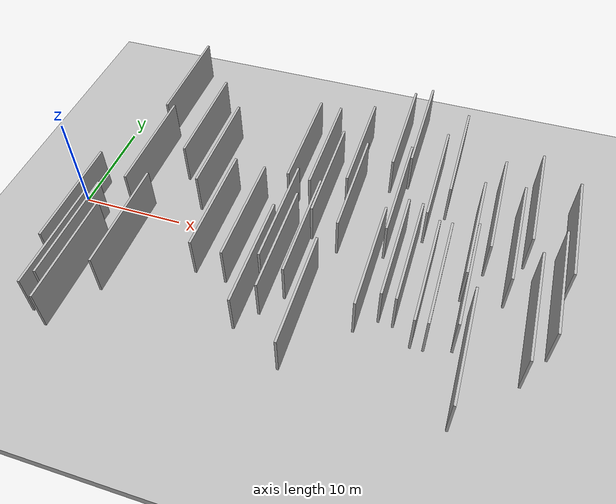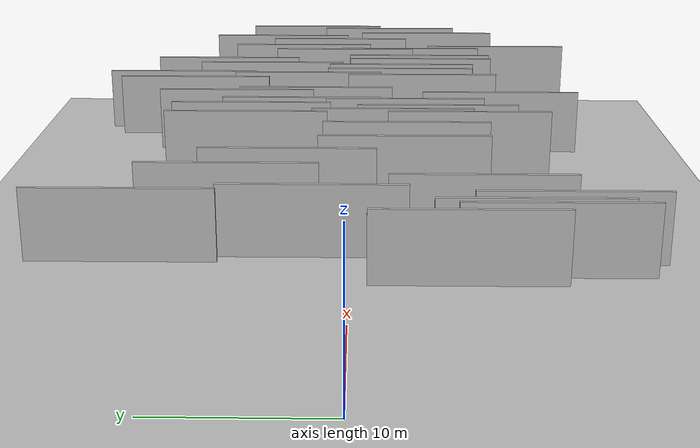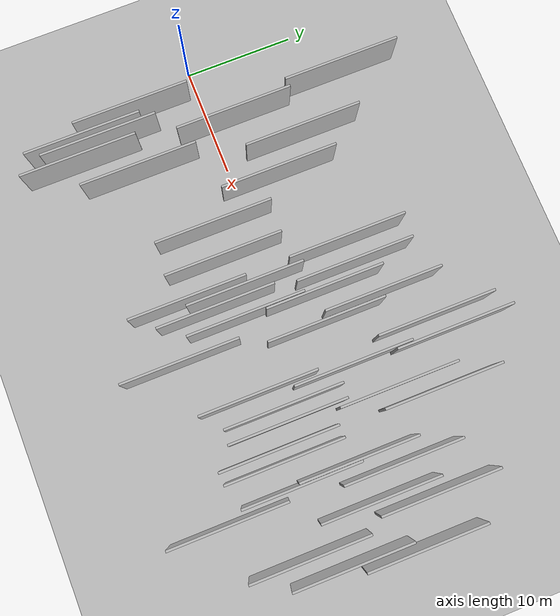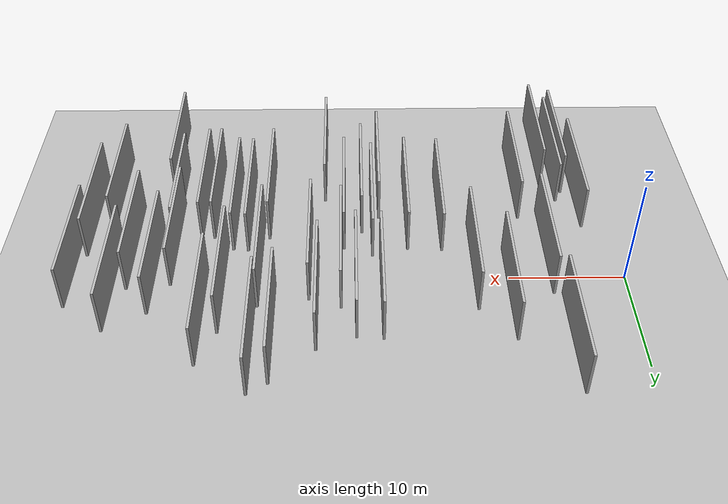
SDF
<?xml version="1.0" encoding="utf-8"?>

<sdf version="1.6">

   <world name="default">

      <gui fullscreen="0">

         <camera name="user_camera">

            <pose>-15 0 4.57585 0 0 0</pose>

            <view_controller>orbit</view_controller>

         </camera>

      </gui>

      <scene>

         <sky>

           <clouds>

             <speed>12</speed>

           </clouds>

         </sky>

         <ambient>0.4 0.4 0.4 1</ambient>

         <background>0.7 0.7 0.7 1</background>

         <shadows>1</shadows>

      </scene>

      <gravity>0 0 -9.8066</gravity>

      <magnetic_field>6e-06 2.3e-05 -4.2e-05</magnetic_field>

      <physics default="0" name="default_physics" type="ode">

         <ode>

            <solver>

               <type>quick</type>

               <iters>10</iters>

               <sor>1.0</sor>

               <use_dynamic_moi_rescaling>0</use_dynamic_moi_rescaling>

            </solver>

            <constraints>

               <cfm>0</cfm>

               <erp>0.2</erp>

               <contact_max_correcting_vel>100</contact_max_correcting_vel>

               <contact_surface_layer>0.001</contact_surface_layer>

            </constraints>

         </ode>

         <max_step_size>0.004</max_step_size>

         <real_time_factor>1</real_time_factor>

         <real_time_update_rate>250</real_time_update_rate>

      </physics>

      <light name="sun" type="directional">

         <cast_shadows>1</cast_shadows>

         <pose>0 0 10 0 0 0</pose>

         <diffuse>0.8 0.8 0.8 1</diffuse>

         <specular>0.2 0.2 0.2 1</specular>

         <attenuation>

            <range>1000</range>

            <constant>0.9</constant>

            <linear>0.01</linear>

            <quadratic>0.001</quadratic>

         </attenuation>

         <direction>-0.5 0.1 -0.9</direction>

      </light>

      <include>

         <name>ground_plane_1</name>

         <uri>model://HANNAS_ground_plane</uri>

         <pose>0 0 0  0 0 0</pose>

      </include>

      <include>

         <name>ground_plane_2</name>

         <uri>model://HANNAS_ground_plane</uri>

         <pose>100 0 0  0 0 0</pose>

      </include>

      <model name="HANNAS_wall_1">

         <static>1</static>

         <pose frame="">43.2806 -5.7247 5.0 0.000000 0.000000 1.570796</pose>

         <link name="link">

            <pose frame="">0 0 2.00 0 0 0</pose>

            <collision name="collision">

               <geometry>

                  <box>

                     <size>10.00 0.2 4.00</size>

                  </box>

               </geometry>

               <max_contacts>10</max_contacts>

               <surface>

                  <contact>

                     <ode/>

                  </contact>

                  <bounce/>

                  <friction>

                     <torsional>

                        <ode/>

                     </torsional>

                     <ode/>

                  </friction>

               </surface>

            </collision>

            <visual name="visual">

               <cast_shadows>0</cast_shadows>

               <geometry>

                  <box>

                     <size>10.00 0.2 4.00</size>

                  </box>

               </geometry>

               <material>

                  <script>

                     <uri>model://HANNAS_wall/materials/scripts</uri>

                     <uri>model://HANNAS_wall/materials/textures</uri>

                     <name>vrc/HANNAS_wall</name>

                  </script>

               </material>

            </visual>

            <self_collide>0</self_collide>

            <enable_wind>0</enable_wind>

            <kinematic>0</kinematic>

         </link>

      </model>

      <model name="HANNAS_wall_2">

         <static>1</static>

         <pose frame="">39.2177 3.6149 5.0 0.000000 0.000000 1.570796</pose>

         <link name="link">

            <pose frame="">0 0 2.00 0 0 0</pose>

            <collision name="collision">

               <geometry>

                  <box>

                     <size>10.00 0.2 4.00</size>

                  </box>

               </geometry>

               <max_contacts>10</max_contacts>

               <surface>

                  <contact>

                     <ode/>

                  </contact>

                  <bounce/>

                  <friction>

                     <torsional>

                        <ode/>

                     </torsional>

                     <ode/>

                  </friction>

               </surface>

            </collision>

            <visual name="visual">

               <cast_shadows>0</cast_shadows>

               <geometry>

                  <box>

                     <size>10.00 0.2 4.00</size>

                  </box>

               </geometry>

               <material>

                  <script>

                     <uri>model://HANNAS_wall/materials/scripts</uri>

                     <uri>model://HANNAS_wall/materials/textures</uri>

                     <name>vrc/HANNAS_wall</name>

                  </script>

               </material>

            </visual>

            <self_collide>0</self_collide>

            <enable_wind>0</enable_wind>

            <kinematic>0</kinematic>

         </link>

      </model>

      <model name="HANNAS_wall_3">

         <static>1</static>

         <pose frame="">30.2851 -4.8442 5.0 0.000000 0.000000 1.570796</pose>

         <link name="link">

            <pose frame="">0 0 2.00 0 0 0</pose>

            <collision name="collision">

               <geometry>

                  <box>

                     <size>10.00 0.2 4.00</size>

                  </box>

               </geometry>

               <max_contacts>10</max_contacts>

               <surface>

                  <contact>

                     <ode/>

                  </contact>

                  <bounce/>

                  <friction>

                     <torsional>

                        <ode/>

                     </torsional>

                     <ode/>

                  </friction>

               </surface>

            </collision>

            <visual name="visual">

               <cast_shadows>0</cast_shadows>

               <geometry>

                  <box>

                     <size>10.00 0.2 4.00</size>

                  </box>

               </geometry>

               <material>

                  <script>

                     <uri>model://HANNAS_wall/materials/scripts</uri>

                     <uri>model://HANNAS_wall/materials/textures</uri>

                     <name>vrc/HANNAS_wall</name>

                  </script>

               </material>

            </visual>

            <self_collide>0</self_collide>

            <enable_wind>0</enable_wind>

            <kinematic>0</kinematic>

         </link>

      </model>

      <model name="HANNAS_wall_4">

         <static>1</static>

         <pose frame="">31.0888 11.5013 5.0 0.000000 0.000000 1.570796</pose>

         <link name="link">

            <pose frame="">0 0 2.00 0 0 0</pose>

            <collision name="collision">

               <geometry>

                  <box>

                     <size>10.00 0.2 4.00</size>

                  </box>

               </geometry>

               <max_contacts>10</max_contacts>

               <surface>

                  <contact>

                     <ode/>

                  </contact>

                  <bounce/>

                  <friction>

                     <torsional>

                        <ode/>

                     </torsional>

                     <ode/>

                  </friction>

               </surface>

            </collision>

            <visual name="visual">

               <cast_shadows>0</cast_shadows>

               <geometry>

                  <box>

                     <size>10.00 0.2 4.00</size>

                  </box>

               </geometry>

               <material>

                  <script>

                     <uri>model://HANNAS_wall/materials/scripts</uri>

                     <uri>model://HANNAS_wall/materials/textures</uri>

                     <name>vrc/HANNAS_wall</name>

                  </script>

               </material>

            </visual>

            <self_collide>0</self_collide>

            <enable_wind>0</enable_wind>

            <kinematic>0</kinematic>

         </link>

      </model>

      <model name="HANNAS_wall_5">

         <static>1</static>

         <pose frame="">33.1559 -3.5065 5.0 0.000000 0.000000 1.570796</pose>

         <link name="link">

            <pose frame="">0 0 2.00 0 0 0</pose>

            <collision name="collision">

               <geometry>

                  <box>

                     <size>10.00 0.2 4.00</size>

                  </box>

               </geometry>

               <max_contacts>10</max_contacts>

               <surface>

                  <contact>

                     <ode/>

                  </contact>

                  <bounce/>

                  <friction>

                     <torsional>

                        <ode/>

                     </torsional>

                     <ode/>

                  </friction>

               </surface>

            </collision>

            <visual name="visual">

               <cast_shadows>0</cast_shadows>

               <geometry>

                  <box>

                     <size>10.00 0.2 4.00</size>

                  </box>

               </geometry>

               <material>

                  <script>

                     <uri>model://HANNAS_wall/materials/scripts</uri>

                     <uri>model://HANNAS_wall/materials/textures</uri>

                     <name>vrc/HANNAS_wall</name>

                  </script>

               </material>

            </visual>

            <self_collide>0</self_collide>

            <enable_wind>0</enable_wind>

            <kinematic>0</kinematic>

         </link>

      </model>

      <model name="HANNAS_wall_6">

         <static>1</static>

         <pose frame="">34.8321 -4.9176 5.0 0.000000 0.000000 1.570796</pose>

         <link name="link">

            <pose frame="">0 0 2.00 0 0 0</pose>

            <collision name="collision">

               <geometry>

                  <box>

                     <size>10.00 0.2 4.00</size>

                  </box>

               </geometry>

               <max_contacts>10</max_contacts>

               <surface>

                  <contact>

                     <ode/>

                  </contact>

                  <bounce/>

                  <friction>

                     <torsional>

                        <ode/>

                     </torsional>

                     <ode/>

                  </friction>

               </surface>

            </collision>

            <visual name="visual">

               <cast_shadows>0</cast_shadows>

               <geometry>

                  <box>

                     <size>10.00 0.2 4.00</size>

                  </box>

               </geometry>

               <material>

                  <script>

                     <uri>model://HANNAS_wall/materials/scripts</uri>

                     <uri>model://HANNAS_wall/materials/textures</uri>

                     <name>vrc/HANNAS_wall</name>

                  </script>

               </material>

            </visual>

            <self_collide>0</self_collide>

            <enable_wind>0</enable_wind>

            <kinematic>0</kinematic>

         </link>

      </model>

      <model name="HANNAS_wall_7">

         <static>1</static>

         <pose frame="">23.2161 6.2033 5.0 0.000000 0.000000 1.570796</pose>

         <link name="link">

            <pose frame="">0 0 2.00 0 0 0</pose>

            <collision name="collision">

               <geometry>

                  <box>

                     <size>10.00 0.2 4.00</size>

                  </box>

               </geometry>

               <max_contacts>10</max_contacts>

               <surface>

                  <contact>

                     <ode/>

                  </contact>

                  <bounce/>

                  <friction>

                     <torsional>

                        <ode/>

                     </torsional>

                     <ode/>

                  </friction>

               </surface>

            </collision>

            <visual name="visual">

               <cast_shadows>0</cast_shadows>

               <geometry>

                  <box>

                     <size>10.00 0.2 4.00</size>

                  </box>

               </geometry>

               <material>

                  <script>

                     <uri>model://HANNAS_wall/materials/scripts</uri>

                     <uri>model://HANNAS_wall/materials/textures</uri>

                     <name>vrc/HANNAS_wall</name>

                  </script>

               </material>

            </visual>

            <self_collide>0</self_collide>

            <enable_wind>0</enable_wind>

            <kinematic>0</kinematic>

         </link>

      </model>

      <model name="HANNAS_wall_8">

         <static>1</static>

         <pose frame="">26.2507 7.3938 5.0 0.000000 0.000000 1.570796</pose>

         <link name="link">

            <pose frame="">0 0 2.00 0 0 0</pose>

            <collision name="collision">

               <geometry>

                  <box>

                     <size>10.00 0.2 4.00</size>

                  </box>

               </geometry>

               <max_contacts>10</max_contacts>

               <surface>

                  <contact>

                     <ode/>

                  </contact>

                  <bounce/>

                  <friction>

                     <torsional>

                        <ode/>

                     </torsional>

                     <ode/>

                  </friction>

               </surface>

            </collision>

            <visual name="visual">

               <cast_shadows>0</cast_shadows>

               <geometry>

                  <box>

                     <size>10.00 0.2 4.00</size>

                  </box>

               </geometry>

               <material>

                  <script>

                     <uri>model://HANNAS_wall/materials/scripts</uri>

                     <uri>model://HANNAS_wall/materials/textures</uri>

                     <name>vrc/HANNAS_wall</name>

                  </script>

               </material>

            </visual>

            <self_collide>0</self_collide>

            <enable_wind>0</enable_wind>

            <kinematic>0</kinematic>

         </link>

      </model>

      <model name="HANNAS_wall_9">

         <static>1</static>

         <pose frame="">9.4835 -7.1806 5.0 0.000000 0.000000 1.570796</pose>

         <link name="link">

            <pose frame="">0 0 2.00 0 0 0</pose>

            <collision name="collision">

               <geometry>

                  <box>

                     <size>10.00 0.2 4.00</size>

                  </box>

               </geometry>

               <max_contacts>10</max_contacts>

               <surface>

                  <contact>

                     <ode/>

                  </contact>

                  <bounce/>

                  <friction>

                     <torsional>

                        <ode/>

                     </torsional>

                     <ode/>

                  </friction>

               </surface>

            </collision>

            <visual name="visual">

               <cast_shadows>0</cast_shadows>

               <geometry>

                  <box>

                     <size>10.00 0.2 4.00</size>

                  </box>

               </geometry>

               <material>

                  <script>

                     <uri>model://HANNAS_wall/materials/scripts</uri>

                     <uri>model://HANNAS_wall/materials/textures</uri>

                     <name>vrc/HANNAS_wall</name>

                  </script>

               </material>

            </visual>

            <self_collide>0</self_collide>

            <enable_wind>0</enable_wind>

            <kinematic>0</kinematic>

         </link>

      </model>

      <model name="HANNAS_wall_10">

         <static>1</static>

         <pose frame="">35.8658 -4.8667 5.0 0.000000 0.000000 1.570796</pose>

         <link name="link">

            <pose frame="">0 0 2.00 0 0 0</pose>

            <collision name="collision">

               <geometry>

                  <box>

                     <size>10.00 0.2 4.00</size>

                  </box>

               </geometry>

               <max_contacts>10</max_contacts>

               <surface>

                  <contact>

                     <ode/>

                  </contact>

                  <bounce/>

                  <friction>

                     <torsional>

                        <ode/>

                     </torsional>

                     <ode/>

                  </friction>

               </surface>

            </collision>

            <visual name="visual">

               <cast_shadows>0</cast_shadows>

               <geometry>

                  <box>

                     <size>10.00 0.2 4.00</size>

                  </box>

               </geometry>

               <material>

                  <script>

                     <uri>model://HANNAS_wall/materials/scripts</uri>

                     <uri>model://HANNAS_wall/materials/textures</uri>

                     <name>vrc/HANNAS_wall</name>

                  </script>

               </material>

            </visual>

            <self_collide>0</self_collide>

            <enable_wind>0</enable_wind>

            <kinematic>0</kinematic>

         </link>

      </model>

      <model name="HANNAS_wall_11">

         <static>1</static>

         <pose frame="">24.3855 3.1231 5.0 0.000000 0.000000 1.570796</pose>

         <link name="link">

            <pose frame="">0 0 2.00 0 0 0</pose>

            <collision name="collision">

               <geometry>

                  <box>

                     <size>10.00 0.2 4.00</size>

                  </box>

               </geometry>

               <max_contacts>10</max_contacts>

               <surface>

                  <contact>

                     <ode/>

                  </contact>

                  <bounce/>

                  <friction>

                     <torsional>

                        <ode/>

                     </torsional>

                     <ode/>

                  </friction>

               </surface>

            </collision>

            <visual name="visual">

               <cast_shadows>0</cast_shadows>

               <geometry>

                  <box>

                     <size>10.00 0.2 4.00</size>

                  </box>

               </geometry>

               <material>

                  <script>

                     <uri>model://HANNAS_wall/materials/scripts</uri>

                     <uri>model://HANNAS_wall/materials/textures</uri>

                     <name>vrc/HANNAS_wall</name>

                  </script>

               </material>

            </visual>

            <self_collide>0</self_collide>

            <enable_wind>0</enable_wind>

            <kinematic>0</kinematic>

         </link>

      </model>

      <model name="HANNAS_wall_12">

         <static>1</static>

         <pose frame="">21.2422 -7.3533 5.0 0.000000 0.000000 1.570796</pose>

         <link name="link">

            <pose frame="">0 0 2.00 0 0 0</pose>

            <collision name="collision">

               <geometry>

                  <box>

                     <size>10.00 0.2 4.00</size>

                  </box>

               </geometry>

               <max_contacts>10</max_contacts>

               <surface>

                  <contact>

                     <ode/>

                  </contact>

                  <bounce/>

                  <friction>

                     <torsional>

                        <ode/>

                     </torsional>

                     <ode/>

                  </friction>

               </surface>

            </collision>

            <visual name="visual">

               <cast_shadows>0</cast_shadows>

               <geometry>

                  <box>

                     <size>10.00 0.2 4.00</size>

                  </box>

               </geometry>

               <material>

                  <script>

                     <uri>model://HANNAS_wall/materials/scripts</uri>

                     <uri>model://HANNAS_wall/materials/textures</uri>

                     <name>vrc/HANNAS_wall</name>

                  </script>

               </material>

            </visual>

            <self_collide>0</self_collide>

            <enable_wind>0</enable_wind>

            <kinematic>0</kinematic>

         </link>

      </model>

      <model name="HANNAS_wall_13">

         <static>1</static>

         <pose frame="">5.9377 -9.3927 5.0 0.000000 0.000000 1.570796</pose>

         <link name="link">

            <pose frame="">0 0 2.00 0 0 0</pose>

            <collision name="collision">

               <geometry>

                  <box>

                     <size>10.00 0.2 4.00</size>

                  </box>

               </geometry>

               <max_contacts>10</max_contacts>

               <surface>

                  <contact>

                     <ode/>

                  </contact>

                  <bounce/>

                  <friction>

                     <torsional>

                        <ode/>

                     </torsional>

                     <ode/>

                  </friction>

               </surface>

            </collision>

            <visual name="visual">

               <cast_shadows>0</cast_shadows>

               <geometry>

                  <box>

                     <size>10.00 0.2 4.00</size>

                  </box>

               </geometry>

               <material>

                  <script>

                     <uri>model://HANNAS_wall/materials/scripts</uri>

                     <uri>model://HANNAS_wall/materials/textures</uri>

                     <name>vrc/HANNAS_wall</name>

                  </script>

               </material>

            </visual>

            <self_collide>0</self_collide>

            <enable_wind>0</enable_wind>

            <kinematic>0</kinematic>

         </link>

      </model>

      <model name="HANNAS_wall_14">

         <static>1</static>

         <pose frame="">21.8525 -2.6701 5.0 0.000000 0.000000 1.570796</pose>

         <link name="link">

            <pose frame="">0 0 2.00 0 0 0</pose>

            <collision name="collision">

               <geometry>

                  <box>

                     <size>10.00 0.2 4.00</size>

                  </box>

               </geometry>

               <max_contacts>10</max_contacts>

               <surface>

                  <contact>

                     <ode/>

                  </contact>

                  <bounce/>

                  <friction>

                     <torsional>

                        <ode/>

                     </torsional>

                     <ode/>

                  </friction>

               </surface>

            </collision>

            <visual name="visual">

               <cast_shadows>0</cast_shadows>

               <geometry>

                  <box>

                     <size>10.00 0.2 4.00</size>

                  </box>

               </geometry>

               <material>

                  <script>

                     <uri>model://HANNAS_wall/materials/scripts</uri>

                     <uri>model://HANNAS_wall/materials/textures</uri>

                     <name>vrc/HANNAS_wall</name>

                  </script>

               </material>

            </visual>

            <self_collide>0</self_collide>

            <enable_wind>0</enable_wind>

            <kinematic>0</kinematic>

         </link>

      </model>

      <model name="HANNAS_wall_15">

         <static>1</static>

         <pose frame="">13.8308 3.4079 5.0 0.000000 0.000000 1.570796</pose>

         <link name="link">

            <pose frame="">0 0 2.00 0 0 0</pose>

            <collision name="collision">

               <geometry>

                  <box>

                     <size>10.00 0.2 4.00</size>

                  </box>

               </geometry>

               <max_contacts>10</max_contacts>

               <surface>

                  <contact>

                     <ode/>

                  </contact>

                  <bounce/>

                  <friction>

                     <torsional>

                        <ode/>

                     </torsional>

                     <ode/>

                  </friction>

               </surface>

            </collision>

            <visual name="visual">

               <cast_shadows>0</cast_shadows>

               <geometry>

                  <box>

                     <size>10.00 0.2 4.00</size>

                  </box>

               </geometry>

               <material>

                  <script>

                     <uri>model://HANNAS_wall/materials/scripts</uri>

                     <uri>model://HANNAS_wall/materials/textures</uri>

                     <name>vrc/HANNAS_wall</name>

                  </script>

               </material>

            </visual>

            <self_collide>0</self_collide>

            <enable_wind>0</enable_wind>

            <kinematic>0</kinematic>

         </link>

      </model>

      <model name="HANNAS_wall_16">

         <static>1</static>

         <pose frame="">30.8367 2.9317 5.0 0.000000 0.000000 1.570796</pose>

         <link name="link">

            <pose frame="">0 0 2.00 0 0 0</pose>

            <collision name="collision">

               <geometry>

                  <box>

                     <size>10.00 0.2 4.00</size>

                  </box>

               </geometry>

               <max_contacts>10</max_contacts>

               <surface>

                  <contact>

                     <ode/>

                  </contact>

                  <bounce/>

                  <friction>

                     <torsional>

                        <ode/>

                     </torsional>

                     <ode/>

                  </friction>

               </surface>

            </collision>

            <visual name="visual">

               <cast_shadows>0</cast_shadows>

               <geometry>

                  <box>

                     <size>10.00 0.2 4.00</size>

                  </box>

               </geometry>

               <material>

                  <script>

                     <uri>model://HANNAS_wall/materials/scripts</uri>

                     <uri>model://HANNAS_wall/materials/textures</uri>

                     <name>vrc/HANNAS_wall</name>

                  </script>

               </material>

            </visual>

            <self_collide>0</self_collide>

            <enable_wind>0</enable_wind>

            <kinematic>0</kinematic>

         </link>

      </model>

      <model name="HANNAS_wall_17">

         <static>1</static>

         <pose frame="">4.3003 -6.0289 5.0 0.000000 0.000000 1.570796</pose>

         <link name="link">

            <pose frame="">0 0 2.00 0 0 0</pose>

            <collision name="collision">

               <geometry>

                  <box>

                     <size>10.00 0.2 4.00</size>

                  </box>

               </geometry>

               <max_contacts>10</max_contacts>

               <surface>

                  <contact>

                     <ode/>

                  </contact>

                  <bounce/>

                  <friction>

                     <torsional>

                        <ode/>

                     </torsional>

                     <ode/>

                  </friction>

               </surface>

            </collision>

            <visual name="visual">

               <cast_shadows>0</cast_shadows>

               <geometry>

                  <box>

                     <size>10.00 0.2 4.00</size>

                  </box>

               </geometry>

               <material>

                  <script>

                     <uri>model://HANNAS_wall/materials/scripts</uri>

                     <uri>model://HANNAS_wall/materials/textures</uri>

                     <name>vrc/HANNAS_wall</name>

                  </script>

               </material>

            </visual>

            <self_collide>0</self_collide>

            <enable_wind>0</enable_wind>

            <kinematic>0</kinematic>

         </link>

      </model>

      <model name="HANNAS_wall_18">

         <static>1</static>

         <pose frame="">33.6634 5.6035 5.0 0.000000 0.000000 1.570796</pose>

         <link name="link">

            <pose frame="">0 0 2.00 0 0 0</pose>

            <collision name="collision">

               <geometry>

                  <box>

                     <size>10.00 0.2 4.00</size>

                  </box>

               </geometry>

               <max_contacts>10</max_contacts>

               <surface>

                  <contact>

                     <ode/>

                  </contact>

                  <bounce/>

                  <friction>

                     <torsional>

                        <ode/>

                     </torsional>

                     <ode/>

                  </friction>

               </surface>

            </collision>

            <visual name="visual">

               <cast_shadows>0</cast_shadows>

               <geometry>

                  <box>

                     <size>10.00 0.2 4.00</size>

                  </box>

               </geometry>

               <material>

                  <script>

                     <uri>model://HANNAS_wall/materials/scripts</uri>

                     <uri>model://HANNAS_wall/materials/textures</uri>

                     <name>vrc/HANNAS_wall</name>

                  </script>

               </material>

            </visual>

            <self_collide>0</self_collide>

            <enable_wind>0</enable_wind>

            <kinematic>0</kinematic>

         </link>

      </model>

      <model name="HANNAS_wall_19">

         <static>1</static>

         <pose frame="">41.2027 0.9340 5.0 0.000000 0.000000 1.570796</pose>

         <link name="link">

            <pose frame="">0 0 2.00 0 0 0</pose>

            <collision name="collision">

               <geometry>

                  <box>

                     <size>10.00 0.2 4.00</size>

                  </box>

               </geometry>

               <max_contacts>10</max_contacts>

               <surface>

                  <contact>

                     <ode/>

                  </contact>

                  <bounce/>

                  <friction>

                     <torsional>

                        <ode/>

                     </torsional>

                     <ode/>

                  </friction>

               </surface>

            </collision>

            <visual name="visual">

               <cast_shadows>0</cast_shadows>

               <geometry>

                  <box>

                     <size>10.00 0.2 4.00</size>

                  </box>

               </geometry>

               <material>

                  <script>

                     <uri>model://HANNAS_wall/materials/scripts</uri>

                     <uri>model://HANNAS_wall/materials/textures</uri>

                     <name>vrc/HANNAS_wall</name>

                  </script>

               </material>

            </visual>

            <self_collide>0</self_collide>

            <enable_wind>0</enable_wind>

            <kinematic>0</kinematic>

         </link>

      </model>

      <model name="HANNAS_wall_20">

         <static>1</static>

         <pose frame="">11.2376 6.5398 5.0 0.000000 0.000000 1.570796</pose>

         <link name="link">

            <pose frame="">0 0 2.00 0 0 0</pose>

            <collision name="collision">

               <geometry>

                  <box>

                     <size>10.00 0.2 4.00</size>

                  </box>

               </geometry>

               <max_contacts>10</max_contacts>

               <surface>

                  <contact>

                     <ode/>

                  </contact>

                  <bounce/>

                  <friction>

                     <torsional>

                        <ode/>

                     </torsional>

                     <ode/>

                  </friction>

               </surface>

            </collision>

            <visual name="visual">

               <cast_shadows>0</cast_shadows>

               <geometry>

                  <box>

                     <size>10.00 0.2 4.00</size>

                  </box>

               </geometry>

               <material>

                  <script>

                     <uri>model://HANNAS_wall/materials/scripts</uri>

                     <uri>model://HANNAS_wall/materials/textures</uri>

                     <name>vrc/HANNAS_wall</name>

                  </script>

               </material>

            </visual>

            <self_collide>0</self_collide>

            <enable_wind>0</enable_wind>

            <kinematic>0</kinematic>

         </link>

      </model>

      <model name="HANNAS_wall_21">

         <static>1</static>

         <pose frame="">29.5893 10.5239 5.0 0.000000 0.000000 1.570796</pose>

         <link name="link">

            <pose frame="">0 0 2.00 0 0 0</pose>

            <collision name="collision">

               <geometry>

                  <box>

                     <size>10.00 0.2 4.00</size>

                  </box>

               </geometry>

               <max_contacts>10</max_contacts>

               <surface>

                  <contact>

                     <ode/>

                  </contact>

                  <bounce/>

                  <friction>

                     <torsional>

                        <ode/>

                     </torsional>

                     <ode/>

                  </friction>

               </surface>

            </collision>

            <visual name="visual">

               <cast_shadows>0</cast_shadows>

               <geometry>

                  <box>

                     <size>10.00 0.2 4.00</size>

                  </box>

               </geometry>

               <material>

                  <script>

                     <uri>model://HANNAS_wall/materials/scripts</uri>

                     <uri>model://HANNAS_wall/materials/textures</uri>

                     <name>vrc/HANNAS_wall</name>

                  </script>

               </material>

            </visual>

            <self_collide>0</self_collide>

            <enable_wind>0</enable_wind>

            <kinematic>0</kinematic>

         </link>

      </model>

      <model name="HANNAS_wall_22">

         <static>1</static>

         <pose frame="">24.1513 -3.4969 5.0 0.000000 0.000000 1.570796</pose>

         <link name="link">

            <pose frame="">0 0 2.00 0 0 0</pose>

            <collision name="collision">

               <geometry>

                  <box>

                     <size>10.00 0.2 4.00</size>

                  </box>

               </geometry>

               <max_contacts>10</max_contacts>

               <surface>

                  <contact>

                     <ode/>

                  </contact>

                  <bounce/>

                  <friction>

                     <torsional>

                        <ode/>

                     </torsional>

                     <ode/>

                  </friction>

               </surface>

            </collision>

            <visual name="visual">

               <cast_shadows>0</cast_shadows>

               <geometry>

                  <box>

                     <size>10.00 0.2 4.00</size>

                  </box>

               </geometry>

               <material>

                  <script>

                     <uri>model://HANNAS_wall/materials/scripts</uri>

                     <uri>model://HANNAS_wall/materials/textures</uri>

                     <name>vrc/HANNAS_wall</name>

                  </script>

               </material>

            </visual>

            <self_collide>0</self_collide>

            <enable_wind>0</enable_wind>

            <kinematic>0</kinematic>

         </link>

      </model>

      <model name="HANNAS_wall_23">

         <static>1</static>

         <pose frame="">38.0123 -4.2904 5.0 0.000000 0.000000 1.570796</pose>

         <link name="link">

            <pose frame="">0 0 2.00 0 0 0</pose>

            <collision name="collision">

               <geometry>

                  <box>

                     <size>10.00 0.2 4.00</size>

                  </box>

               </geometry>

               <max_contacts>10</max_contacts>

               <surface>

                  <contact>

                     <ode/>

                  </contact>

                  <bounce/>

                  <friction>

                     <torsional>

                        <ode/>

                     </torsional>

                     <ode/>

                  </friction>

               </surface>

            </collision>

            <visual name="visual">

               <cast_shadows>0</cast_shadows>

               <geometry>

                  <box>

                     <size>10.00 0.2 4.00</size>

                  </box>

               </geometry>

               <material>

                  <script>

                     <uri>model://HANNAS_wall/materials/scripts</uri>

                     <uri>model://HANNAS_wall/materials/textures</uri>

                     <name>vrc/HANNAS_wall</name>

                  </script>

               </material>

            </visual>

            <self_collide>0</self_collide>

            <enable_wind>0</enable_wind>

            <kinematic>0</kinematic>

         </link>

      </model>

      <model name="HANNAS_wall_24">

         <static>1</static>

         <pose frame="">44.9757 -2.9199 5.0 0.000000 0.000000 1.570796</pose>

         <link name="link">

            <pose frame="">0 0 2.00 0 0 0</pose>

            <collision name="collision">

               <geometry>

                  <box>

                     <size>10.00 0.2 4.00</size>

                  </box>

               </geometry>

               <max_contacts>10</max_contacts>

               <surface>

                  <contact>

                     <ode/>

                  </contact>

                  <bounce/>

                  <friction>

                     <torsional>

                        <ode/>

                     </torsional>

                     <ode/>

                  </friction>

               </surface>

            </collision>

            <visual name="visual">

               <cast_shadows>0</cast_shadows>

               <geometry>

                  <box>

                     <size>10.00 0.2 4.00</size>

                  </box>

               </geometry>

               <material>

                  <script>

                     <uri>model://HANNAS_wall/materials/scripts</uri>

                     <uri>model://HANNAS_wall/materials/textures</uri>

                     <name>vrc/HANNAS_wall</name>

                  </script>

               </material>

            </visual>

            <self_collide>0</self_collide>

            <enable_wind>0</enable_wind>

            <kinematic>0</kinematic>

         </link>

      </model>

      <model name="HANNAS_wall_25">

         <static>1</static>

         <pose frame="">6.9880 -11.4951 5.0 0.000000 0.000000 1.570796</pose>

         <link name="link">

            <pose frame="">0 0 2.00 0 0 0</pose>

            <collision name="collision">

               <geometry>

                  <box>

                     <size>10.00 0.2 4.00</size>

                  </box>

               </geometry>

               <max_contacts>10</max_contacts>

               <surface>

                  <contact>

                     <ode/>

                  </contact>

                  <bounce/>

                  <friction>

                     <torsional>

                        <ode/>

                     </torsional>

                     <ode/>

                  </friction>

               </surface>

            </collision>

            <visual name="visual">

               <cast_shadows>0</cast_shadows>

               <geometry>

                  <box>

                     <size>10.00 0.2 4.00</size>

                  </box>

               </geometry>

               <material>

                  <script>

                     <uri>model://HANNAS_wall/materials/scripts</uri>

                     <uri>model://HANNAS_wall/materials/textures</uri>

                     <name>vrc/HANNAS_wall</name>

                  </script>

               </material>

            </visual>

            <self_collide>0</self_collide>

            <enable_wind>0</enable_wind>

            <kinematic>0</kinematic>

         </link>

      </model>

      <model name="HANNAS_wall_26">

         <static>1</static>

         <pose frame="">25.7576 -9.6744 5.0 0.000000 0.000000 1.570796</pose>

         <link name="link">

            <pose frame="">0 0 2.00 0 0 0</pose>

            <collision name="collision">

               <geometry>

                  <box>

                     <size>10.00 0.2 4.00</size>

                  </box>

               </geometry>

               <max_contacts>10</max_contacts>

               <surface>

                  <contact>

                     <ode/>

                  </contact>

                  <bounce/>

                  <friction>

                     <torsional>

                        <ode/>

                     </torsional>

                     <ode/>

                  </friction>

               </surface>

            </collision>

            <visual name="visual">

               <cast_shadows>0</cast_shadows>

               <geometry>

                  <box>

                     <size>10.00 0.2 4.00</size>

                  </box>

               </geometry>

               <material>

                  <script>

                     <uri>model://HANNAS_wall/materials/scripts</uri>

                     <uri>model://HANNAS_wall/materials/textures</uri>

                     <name>vrc/HANNAS_wall</name>

                  </script>

               </material>

            </visual>

            <self_collide>0</self_collide>

            <enable_wind>0</enable_wind>

            <kinematic>0</kinematic>

         </link>

      </model>

      <model name="HANNAS_wall_27">

         <static>1</static>

         <pose frame="">42.3378 5.3656 5.0 0.000000 0.000000 1.570796</pose>

         <link name="link">

            <pose frame="">0 0 2.00 0 0 0</pose>

            <collision name="collision">

               <geometry>

                  <box>

                     <size>10.00 0.2 4.00</size>

                  </box>

               </geometry>

               <max_contacts>10</max_contacts>

               <surface>

                  <contact>

                     <ode/>

                  </contact>

                  <bounce/>

                  <friction>

                     <torsional>

                        <ode/>

                     </torsional>

                     <ode/>

                  </friction>

               </surface>

            </collision>

            <visual name="visual">

               <cast_shadows>0</cast_shadows>

               <geometry>

                  <box>

                     <size>10.00 0.2 4.00</size>

                  </box>

               </geometry>

               <material>

                  <script>

                     <uri>model://HANNAS_wall/materials/scripts</uri>

                     <uri>model://HANNAS_wall/materials/textures</uri>

                     <name>vrc/HANNAS_wall</name>

                  </script>

               </material>

            </visual>

            <self_collide>0</self_collide>

            <enable_wind>0</enable_wind>

            <kinematic>0</kinematic>

         </link>

      </model>

      <model name="HANNAS_wall_28">

         <static>1</static>

         <pose frame="">22.6947 -5.4987 5.0 0.000000 0.000000 1.570796</pose>

         <link name="link">

            <pose frame="">0 0 2.00 0 0 0</pose>

            <collision name="collision">

               <geometry>

                  <box>

                     <size>10.00 0.2 4.00</size>

                  </box>

               </geometry>

               <max_contacts>10</max_contacts>

               <surface>

                  <contact>

                     <ode/>

                  </contact>

                  <bounce/>

                  <friction>

                     <torsional>

                        <ode/>

                     </torsional>

                     <ode/>

                  </friction>

               </surface>

            </collision>

            <visual name="visual">

               <cast_shadows>0</cast_shadows>

               <geometry>

                  <box>

                     <size>10.00 0.2 4.00</size>

                  </box>

               </geometry>

               <material>

                  <script>

                     <uri>model://HANNAS_wall/materials/scripts</uri>

                     <uri>model://HANNAS_wall/materials/textures</uri>

                     <name>vrc/HANNAS_wall</name>

                  </script>

               </material>

            </visual>

            <self_collide>0</self_collide>

            <enable_wind>0</enable_wind>

            <kinematic>0</kinematic>

         </link>

      </model>

      <model name="HANNAS_wall_29">

         <static>1</static>

         <pose frame="">38.7486 -10.6226 5.0 0.000000 0.000000 1.570796</pose>

         <link name="link">

            <pose frame="">0 0 2.00 0 0 0</pose>

            <collision name="collision">

               <geometry>

                  <box>

                     <size>10.00 0.2 4.00</size>

                  </box>

               </geometry>

               <max_contacts>10</max_contacts>

               <surface>

                  <contact>

                     <ode/>

                  </contact>

                  <bounce/>

                  <friction>

                     <torsional>

                        <ode/>

                     </torsional>

                     <ode/>

                  </friction>

               </surface>

            </collision>

            <visual name="visual">

               <cast_shadows>0</cast_shadows>

               <geometry>

                  <box>

                     <size>10.00 0.2 4.00</size>

                  </box>

               </geometry>

               <material>

                  <script>

                     <uri>model://HANNAS_wall/materials/scripts</uri>

                     <uri>model://HANNAS_wall/materials/textures</uri>

                     <name>vrc/HANNAS_wall</name>

                  </script>

               </material>

            </visual>

            <self_collide>0</self_collide>

            <enable_wind>0</enable_wind>

            <kinematic>0</kinematic>

         </link>

      </model>

      <model name="HANNAS_wall_30">

         <static>1</static>

         <pose frame="">26.8792 2.2749 5.0 0.000000 0.000000 1.570796</pose>

         <link name="link">

            <pose frame="">0 0 2.00 0 0 0</pose>

            <collision name="collision">

               <geometry>

                  <box>

                     <size>10.00 0.2 4.00</size>

                  </box>

               </geometry>

               <max_contacts>10</max_contacts>

               <surface>

                  <contact>

                     <ode/>

                  </contact>

                  <bounce/>

                  <friction>

                     <torsional>

                        <ode/>

                     </torsional>

                     <ode/>

                  </friction>

               </surface>

            </collision>

            <visual name="visual">

               <cast_shadows>0</cast_shadows>

               <geometry>

                  <box>

                     <size>10.00 0.2 4.00</size>

                  </box>

               </geometry>

               <material>

                  <script>

                     <uri>model://HANNAS_wall/materials/scripts</uri>

                     <uri>model://HANNAS_wall/materials/textures</uri>

                     <name>vrc/HANNAS_wall</name>

                  </script>

               </material>

            </visual>

            <self_collide>0</self_collide>

            <enable_wind>0</enable_wind>

            <kinematic>0</kinematic>

         </link>

      </model>

      <model name="HANNAS_wall_31">

         <static>1</static>

         <pose frame="">16.2011 -3.2169 5.0 0.000000 0.000000 1.570796</pose>

         <link name="link">

            <pose frame="">0 0 2.00 0 0 0</pose>

            <collision name="collision">

               <geometry>

                  <box>

                     <size>10.00 0.2 4.00</size>

                  </box>

               </geometry>

               <max_contacts>10</max_contacts>

               <surface>

                  <contact>

                     <ode/>

                  </contact>

                  <bounce/>

                  <friction>

                     <torsional>

                        <ode/>

                     </torsional>

                     <ode/>

                  </friction>

               </surface>

            </collision>

            <visual name="visual">

               <cast_shadows>0</cast_shadows>

               <geometry>

                  <box>

                     <size>10.00 0.2 4.00</size>

                  </box>

               </geometry>

               <material>

                  <script>

                     <uri>model://HANNAS_wall/materials/scripts</uri>

                     <uri>model://HANNAS_wall/materials/textures</uri>

                     <name>vrc/HANNAS_wall</name>

                  </script>

               </material>

            </visual>

            <self_collide>0</self_collide>

            <enable_wind>0</enable_wind>

            <kinematic>0</kinematic>

         </link>

      </model>

      <model name="HANNAS_wall_32">

         <static>1</static>

         <pose frame="">45.7295 2.8122 5.0 0.000000 0.000000 1.570796</pose>

         <link name="link">

            <pose frame="">0 0 2.00 0 0 0</pose>

            <collision name="collision">

               <geometry>

                  <box>

                     <size>10.00 0.2 4.00</size>

                  </box>

               </geometry>

               <max_contacts>10</max_contacts>

               <surface>

                  <contact>

                     <ode/>

                  </contact>

                  <bounce/>

                  <friction>

                     <torsional>

                        <ode/>

                     </torsional>

                     <ode/>

                  </friction>

               </surface>

            </collision>

            <visual name="visual">

               <cast_shadows>0</cast_shadows>

               <geometry>

                  <box>

                     <size>10.00 0.2 4.00</size>

                  </box>

               </geometry>

               <material>

                  <script>

                     <uri>model://HANNAS_wall/materials/scripts</uri>

                     <uri>model://HANNAS_wall/materials/textures</uri>

                     <name>vrc/HANNAS_wall</name>

                  </script>

               </material>

            </visual>

            <self_collide>0</self_collide>

            <enable_wind>0</enable_wind>

            <kinematic>0</kinematic>

         </link>

      </model>

      <model name="HANNAS_wall_33">

         <static>1</static>

         <pose frame="">5.3317 -10.5720 5.0 0.000000 0.000000 1.570796</pose>

         <link name="link">

            <pose frame="">0 0 2.00 0 0 0</pose>

            <collision name="collision">

               <geometry>

                  <box>

                     <size>10.00 0.2 4.00</size>

                  </box>

               </geometry>

               <max_contacts>10</max_contacts>

               <surface>

                  <contact>

                     <ode/>

                  </contact>

                  <bounce/>

                  <friction>

                     <torsional>

                        <ode/>

                     </torsional>

                     <ode/>

                  </friction>

               </surface>

            </collision>

            <visual name="visual">

               <cast_shadows>0</cast_shadows>

               <geometry>

                  <box>

                     <size>10.00 0.2 4.00</size>

                  </box>

               </geometry>

               <material>

                  <script>

                     <uri>model://HANNAS_wall/materials/scripts</uri>

                     <uri>model://HANNAS_wall/materials/textures</uri>

                     <name>vrc/HANNAS_wall</name>

                  </script>

               </material>

            </visual>

            <self_collide>0</self_collide>

            <enable_wind>0</enable_wind>

            <kinematic>0</kinematic>

         </link>

      </model>

      <model name="HANNAS_wall_34">

         <static>1</static>

         <pose frame="">31.9536 -3.3789 5.0 0.000000 0.000000 1.570796</pose>

         <link name="link">

            <pose frame="">0 0 2.00 0 0 0</pose>

            <collision name="collision">

               <geometry>

                  <box>

                     <size>10.00 0.2 4.00</size>

                  </box>

               </geometry>

               <max_contacts>10</max_contacts>

               <surface>

                  <contact>

                     <ode/>

                  </contact>

                  <bounce/>

                  <friction>

                     <torsional>

                        <ode/>

                     </torsional>

                     <ode/>

                  </friction>

               </surface>

            </collision>

            <visual name="visual">

               <cast_shadows>0</cast_shadows>

               <geometry>

                  <box>

                     <size>10.00 0.2 4.00</size>

                  </box>

               </geometry>

               <material>

                  <script>

                     <uri>model://HANNAS_wall/materials/scripts</uri>

                     <uri>model://HANNAS_wall/materials/textures</uri>

                     <name>vrc/HANNAS_wall</name>

                  </script>

               </material>

            </visual>

            <self_collide>0</self_collide>

            <enable_wind>0</enable_wind>

            <kinematic>0</kinematic>

         </link>

      </model>

      <model name="HANNAS_wall_35">

         <static>1</static>

         <pose frame="">7.8133 1.7838 5.0 0.000000 0.000000 1.570796</pose>

         <link name="link">

            <pose frame="">0 0 2.00 0 0 0</pose>

            <collision name="collision">

               <geometry>

                  <box>

                     <size>10.00 0.2 4.00</size>

                  </box>

               </geometry>

               <max_contacts>10</max_contacts>

               <surface>

                  <contact>

                     <ode/>

                  </contact>

                  <bounce/>

                  <friction>

                     <torsional>

                        <ode/>

                     </torsional>

                     <ode/>

                  </friction>

               </surface>

            </collision>

            <visual name="visual">

               <cast_shadows>0</cast_shadows>

               <geometry>

                  <box>

                     <size>10.00 0.2 4.00</size>

                  </box>

               </geometry>

               <material>

                  <script>

                     <uri>model://HANNAS_wall/materials/scripts</uri>

                     <uri>model://HANNAS_wall/materials/textures</uri>

                     <name>vrc/HANNAS_wall</name>

                  </script>

               </material>

            </visual>

            <self_collide>0</self_collide>

            <enable_wind>0</enable_wind>

            <kinematic>0</kinematic>

         </link>

      </model>

      <model name="HANNAS_wall_36">

         <static>1</static>

         <pose frame="">18.9756 -3.4213 5.0 0.000000 0.000000 1.570796</pose>

         <link name="link">

            <pose frame="">0 0 2.00 0 0 0</pose>

            <collision name="collision">

               <geometry>

                  <box>

                     <size>10.00 0.2 4.00</size>

                  </box>

               </geometry>

               <max_contacts>10</max_contacts>

               <surface>

                  <contact>

                     <ode/>

                  </contact>

                  <bounce/>

                  <friction>

                     <torsional>

                        <ode/>

                     </torsional>

                     <ode/>

                  </friction>

               </surface>

            </collision>

            <visual name="visual">

               <cast_shadows>0</cast_shadows>

               <geometry>

                  <box>

                     <size>10.00 0.2 4.00</size>

                  </box>

               </geometry>

               <material>

                  <script>

                     <uri>model://HANNAS_wall/materials/scripts</uri>

                     <uri>model://HANNAS_wall/materials/textures</uri>

                     <name>vrc/HANNAS_wall</name>

                  </script>

               </material>

            </visual>

            <self_collide>0</self_collide>

            <enable_wind>0</enable_wind>

            <kinematic>0</kinematic>

         </link>

      </model>

      <model name="HANNAS_wall_37">

         <static>1</static>

         <pose frame="">7.1023 11.6395 5.0 0.000000 0.000000 1.570796</pose>

         <link name="link">

            <pose frame="">0 0 2.00 0 0 0</pose>

            <collision name="collision">

               <geometry>

                  <box>

                     <size>10.00 0.2 4.00</size>

                  </box>

               </geometry>

               <max_contacts>10</max_contacts>

               <surface>

                  <contact>

                     <ode/>

                  </contact>

                  <bounce/>

                  <friction>

                     <torsional>

                        <ode/>

                     </torsional>

                     <ode/>

                  </friction>

               </surface>

            </collision>

            <visual name="visual">

               <cast_shadows>0</cast_shadows>

               <geometry>

                  <box>

                     <size>10.00 0.2 4.00</size>

                  </box>

               </geometry>

               <material>

                  <script>

                     <uri>model://HANNAS_wall/materials/scripts</uri>

                     <uri>model://HANNAS_wall/materials/textures</uri>

                     <name>vrc/HANNAS_wall</name>

                  </script>

               </material>

            </visual>

            <self_collide>0</self_collide>

            <enable_wind>0</enable_wind>

            <kinematic>0</kinematic>

         </link>

      </model>

      <model name="HANNAS_wall_38">

         <static>1</static>

         <pose frame="">21.1961 6.3736 5.0 0.000000 0.000000 1.570796</pose>

         <link name="link">

            <pose frame="">0 0 2.00 0 0 0</pose>

            <collision name="collision">

               <geometry>

                  <box>

                     <size>10.00 0.2 4.00</size>

                  </box>

               </geometry>

               <max_contacts>10</max_contacts>

               <surface>

                  <contact>

                     <ode/>

                  </contact>

                  <bounce/>

                  <friction>

                     <torsional>

                        <ode/>

                     </torsional>

                     <ode/>

                  </friction>

               </surface>

            </collision>

            <visual name="visual">

               <cast_shadows>0</cast_shadows>

               <geometry>

                  <box>

                     <size>10.00 0.2 4.00</size>

                  </box>

               </geometry>

               <material>

                  <script>

                     <uri>model://HANNAS_wall/materials/scripts</uri>

                     <uri>model://HANNAS_wall/materials/textures</uri>

                     <name>vrc/HANNAS_wall</name>

                  </script>

               </material>

            </visual>

            <self_collide>0</self_collide>

            <enable_wind>0</enable_wind>

            <kinematic>0</kinematic>

         </link>

      </model>

      <model name="HANNAS_wall_39">

         <static>1</static>

         <pose frame="">35.0470 8.7877 5.0 0.000000 0.000000 1.570796</pose>

         <link name="link">

            <pose frame="">0 0 2.00 0 0 0</pose>

            <collision name="collision">

               <geometry>

                  <box>

                     <size>10.00 0.2 4.00</size>

                  </box>

               </geometry>

               <max_contacts>10</max_contacts>

               <surface>

                  <contact>

                     <ode/>

                  </contact>

                  <bounce/>

                  <friction>

                     <torsional>

                        <ode/>

                     </torsional>

                     <ode/>

                  </friction>

               </surface>

            </collision>

            <visual name="visual">

               <cast_shadows>0</cast_shadows>

               <geometry>

                  <box>

                     <size>10.00 0.2 4.00</size>

                  </box>

               </geometry>

               <material>

                  <script>

                     <uri>model://HANNAS_wall/materials/scripts</uri>

                     <uri>model://HANNAS_wall/materials/textures</uri>

                     <name>vrc/HANNAS_wall</name>

                  </script>

               </material>

            </visual>

            <self_collide>0</self_collide>

            <enable_wind>0</enable_wind>

            <kinematic>0</kinematic>

         </link>

      </model>

      <model name="HANNAS_wall_40">

         <static>1</static>

         <pose frame="">37.8038 0.5188 5.0 0.000000 0.000000 1.570796</pose>

         <link name="link">

            <pose frame="">0 0 2.00 0 0 0</pose>

            <collision name="collision">

               <geometry>

                  <box>

                     <size>10.00 0.2 4.00</size>

                  </box>

               </geometry>

               <max_contacts>10</max_contacts>

               <surface>

                  <contact>

                     <ode/>

                  </contact>

                  <bounce/>

                  <friction>

                     <torsional>

                        <ode/>

                     </torsional>

                     <ode/>

                  </friction>

               </surface>

            </collision>

            <visual name="visual">

               <cast_shadows>0</cast_shadows>

               <geometry>

                  <box>

                     <size>10.00 0.2 4.00</size>

                  </box>

               </geometry>

               <material>

                  <script>

                     <uri>model://HANNAS_wall/materials/scripts</uri>

                     <uri>model://HANNAS_wall/materials/textures</uri>

                     <name>vrc/HANNAS_wall</name>

                  </script>

               </material>

            </visual>

            <self_collide>0</self_collide>

            <enable_wind>0</enable_wind>

            <kinematic>0</kinematic>

         </link>

      </model>

   </world>

</sdf>
